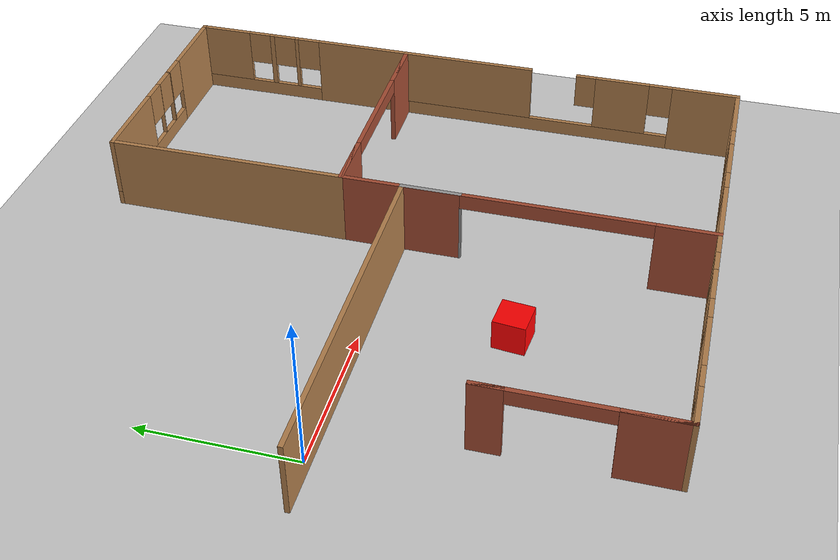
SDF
<sdf version="1.7">
 <world name="default">
  <model name="ground_plane">
   <static>1</static>
   <link name="link">
    <collision name="collision">
     <geometry><plane><normal>0 0 1</normal><size>100 100</size></plane></geometry>
     <surface>
      <contact><collide_bitmask>65535</collide_bitmask></contact>
      <friction><ode><mu>100</mu><mu2>50</mu2></ode></friction>
     </surface>
    </collision>
    <visual name="visual">
     <cast_shadows>0</cast_shadows>
     <geometry><plane><normal>0 0 1</normal><size>100 100</size></plane></geometry>
     <material>
      <script><uri>file://media/materials/scripts/gazebo.material</uri><name>Gazebo/Grey</name></script>
     </material>
    </visual>
   </link>
  </model>
  <model name="Untitled">
   <pose>3.61362 -0.139707 0 0 -0 0</pose>
   <link name="Wall_104">
    <pose>13.7 -3.925 0 0 -0 1.5708</pose>
    <visual name="Wall_104_Visual_0">
     <pose>-4.84194 0 1.25 0 -0 0</pose>
     <geometry><box><size>2.31612 0.15 2.5</size></box></geometry>
     <material>
      <script><uri>file://media/materials/scripts/gazebo.material</uri><name>Gazebo/Wood</name></script>
      <ambient>1 1 1 1</ambient>
     </material>
     <meta><layer>0</layer></meta>
    </visual>
    <collision name="Wall_104_Collision_0">
     <geometry><box><size>2.31612 0.15 2.5</size></box></geometry>
     <pose>-4.84194 0 1.25 0 -0 0</pose>
    </collision>
    <visual name="Wall_104_Visual_1">
     <pose>1.15806 0 0.25 0 -0 0</pose>
     <geometry><box><size>9.68388 0.15 0.5</size></box></geometry>
     <material>
      <script><uri>file://media/materials/scripts/gazebo.material</uri><name>Gazebo/Wood</name></script>
      <ambient>1 1 1 1</ambient>
     </material>
     <meta><layer>0</layer></meta>
    </visual>
    <collision name="Wall_104_Collision_1">
     <geometry><box><size>9.68388 0.15 0.5</size></box></geometry>
     <pose>1.15806 0 0.25 0 -0 0</pose>
    </collision>
    <visual name="Wall_104_Visual_2">
     <pose>-1.94057 0 1.5 0 -0 0</pose>
     <geometry><box><size>1.88662 0.15 2</size></box></geometry>
     <material>
      <script><uri>file://media/materials/scripts/gazebo.material</uri><name>Gazebo/Wood</name></script>
      <ambient>1 1 1 1</ambient>
     </material>
     <meta><layer>0</layer></meta>
    </visual>
    <collision name="Wall_104_Collision_2">
     <geometry><box><size>1.88662 0.15 2</size></box></geometry>
     <pose>-1.94057 0 1.5 0 -0 0</pose>
    </collision>
    <visual name="Wall_104_Visual_3">
     <pose>3.64617 0 1.5 0 -0 0</pose>
     <geometry><box><size>4.70765 0.15 2</size></box></geometry>
     <material>
      <script><uri>file://media/materials/scripts/gazebo.material</uri><name>Gazebo/Wood</name></script>
      <ambient>1 1 1 1</ambient>
     </material>
     <meta><layer>0</layer></meta>
    </visual>
    <collision name="Wall_104_Collision_3">
     <geometry><box><size>4.70765 0.15 2</size></box></geometry>
     <pose>3.64617 0 1.5 0 -0 0</pose>
    </collision>
    <visual name="Wall_104_Visual_4">
     <pose>-3.28388 0 1.9 0 -0 0</pose>
     <geometry><box><size>0.8 0.15 1.2</size></box></geometry>
     <material>
      <script><uri>file://media/materials/scripts/gazebo.material</uri><name>Gazebo/Wood</name></script>
      <ambient>1 1 1 1</ambient>
     </material>
     <meta><layer>0</layer></meta>
    </visual>
    <collision name="Wall_104_Collision_4">
     <geometry><box><size>0.8 0.15 1.2</size></box></geometry>
     <pose>-3.28388 0 1.9 0 -0 0</pose>
    </collision>
    <visual name="Wall_104_Visual_5">
     <pose>-0.651462 0 1.9 0 -0 0</pose>
     <geometry><box><size>0.691605 0.15 1.2</size></box></geometry>
     <material>
      <script><uri>file://media/materials/scripts/gazebo.material</uri><name>Gazebo/Wood</name></script>
      <ambient>1 1 1 1</ambient>
     </material>
     <meta><layer>0</layer></meta>
    </visual>
    <collision name="Wall_104_Collision_5">
     <geometry><box><size>0.691605 0.15 1.2</size></box></geometry>
     <pose>-0.651462 0 1.9 0 -0 0</pose>
    </collision>
   </link>
   <link name="Wall_105">
    <pose>9.775 2 0 0 -0 3.14159</pose>
    <visual name="Wall_105_Visual_0">
     <pose>-2.99483 0 1.25 0 -0 0</pose>
     <geometry><box><size>2.01034 0.15 2.5</size></box></geometry>
     <material>
      <script><uri>file://media/materials/scripts/gazebo.material</uri><name>Gazebo/Bricks</name></script>
      <ambient>1 1 1 1</ambient>
     </material>
     <meta><layer>0</layer></meta>
    </visual>
    <collision name="Wall_105_Collision_0">
     <geometry><box><size>2.01034 0.15 2.5</size></box></geometry>
     <pose>-2.99483 0 1.25 0 -0 0</pose>
    </collision>
    <visual name="Wall_105_Visual_1">
     <pose>3.00517 0 1.25 0 -0 0</pose>
     <geometry><box><size>1.98966 0.15 2.5</size></box></geometry>
     <material>
      <script><uri>file://media/materials/scripts/gazebo.material</uri><name>Gazebo/Bricks</name></script>
      <ambient>1 1 1 1</ambient>
     </material>
     <meta><layer>0</layer></meta>
    </visual>
    <collision name="Wall_105_Collision_1">
     <geometry><box><size>1.98966 0.15 2.5</size></box></geometry>
     <pose>3.00517 0 1.25 0 -0 0</pose>
    </collision>
    <visual name="Wall_105_Visual_2">
     <pose>0.010343 0 2.25 0 -0 0</pose>
     <geometry><box><size>4 0.15 0.5</size></box></geometry>
     <material>
      <script><uri>file://media/materials/scripts/gazebo.material</uri><name>Gazebo/Bricks</name></script>
      <ambient>1 1 1 1</ambient>
     </material>
     <meta><layer>0</layer></meta>
    </visual>
    <collision name="Wall_105_Collision_2">
     <geometry><box><size>4 0.15 0.5</size></box></geometry>
     <pose>0.010343 0 2.25 0 -0 0</pose>
    </collision>
   </link>
   <link name="Wall_106">
    <collision name="Wall_106_Collision">
     <geometry><box><size>2 0.15 2.5</size></box></geometry>
     <pose>0 0 1.25 0 -0 0</pose>
    </collision>
    <visual name="Wall_106_Visual">
     <pose>0 0 1.25 0 -0 0</pose>
     <geometry><box><size>2 0.15 2.5</size></box></geometry>
     <material>
      <script><uri>file://media/materials/scripts/gazebo.material</uri><name>Gazebo/Bricks</name></script>
      <ambient>1 1 1 1</ambient>
     </material>
     <meta><layer>0</layer></meta>
    </visual>
    <pose>6.775 2 0 0 -0 0</pose>
   </link>
   <link name="Wall_109">
    <collision name="Wall_109_Collision">
     <geometry><box><size>2 0.15 2.5</size></box></geometry>
     <pose>0 0 1.25 0 -0 0</pose>
    </collision>
    <visual name="Wall_109_Visual">
     <pose>0 0 1.25 0 -0 0</pose>
     <geometry><box><size>2 0.15 2.5</size></box></geometry>
     <material>
      <script><uri>file://media/materials/scripts/gazebo.material</uri><name>Gazebo/Bricks</name></script>
      <ambient>1 1 1 1</ambient>
     </material>
     <meta><layer>0</layer></meta>
    </visual>
    <pose>12.775 2 0 0 -0 3.14159</pose>
   </link>
   <link name="Wall_160">
    <pose>13.7 5.925 0 0 -0 1.5708</pose>
    <visual name="Wall_160_Visual_0">
     <pose>-2.29442 0 1.25 0 -0 0</pose>
     <geometry><box><size>3.41115 0.15 2.5</size></box></geometry>
     <material>
      <script><uri>file://media/materials/scripts/gazebo.material</uri><name>Gazebo/Wood</name></script>
      <ambient>1 1 1 1</ambient>
     </material>
     <meta><layer>0</layer></meta>
    </visual>
    <collision name="Wall_160_Collision_0">
     <geometry><box><size>3.41115 0.15 2.5</size></box></geometry>
     <pose>-2.29442 0 1.25 0 -0 0</pose>
    </collision>
    <visual name="Wall_160_Visual_1">
     <pose>1.70558 0 0.25 0 -0 0</pose>
     <geometry><box><size>4.58885 0.15 0.5</size></box></geometry>
     <material>
      <script><uri>file://media/materials/scripts/gazebo.material</uri><name>Gazebo/Wood</name></script>
      <ambient>1 1 1 1</ambient>
     </material>
     <meta><layer>0</layer></meta>
    </visual>
    <collision name="Wall_160_Collision_1">
     <geometry><box><size>4.58885 0.15 0.5</size></box></geometry>
     <pose>1.70558 0 0.25 0 -0 0</pose>
    </collision>
    <visual name="Wall_160_Visual_2">
     <pose>0.276509 0 1.5 0 -0 0</pose>
     <geometry><box><size>0.130717 0.15 2</size></box></geometry>
     <material>
      <script><uri>file://media/materials/scripts/gazebo.material</uri><name>Gazebo/Wood</name></script>
      <ambient>1 1 1 1</ambient>
     </material>
     <meta><layer>0</layer></meta>
    </visual>
    <collision name="Wall_160_Collision_2">
     <geometry><box><size>0.130717 0.15 2</size></box></geometry>
     <pose>0.276509 0 1.5 0 -0 0</pose>
    </collision>
    <visual name="Wall_160_Visual_3">
     <pose>1.22734 0 1.5 0 -0 0</pose>
     <geometry><box><size>0.170934 0.15 2</size></box></geometry>
     <material>
      <script><uri>file://media/materials/scripts/gazebo.material</uri><name>Gazebo/Wood</name></script>
      <ambient>1 1 1 1</ambient>
     </material>
     <meta><layer>0</layer></meta>
    </visual>
    <collision name="Wall_160_Collision_3">
     <geometry><box><size>0.170934 0.15 2</size></box></geometry>
     <pose>1.22734 0 1.5 0 -0 0</pose>
    </collision>
    <visual name="Wall_160_Visual_4">
     <pose>3.0564 0 1.5 0 -0 0</pose>
     <geometry><box><size>1.8872 0.15 2</size></box></geometry>
     <material>
      <script><uri>file://media/materials/scripts/gazebo.material</uri><name>Gazebo/Wood</name></script>
      <ambient>1 1 1 1</ambient>
     </material>
     <meta><layer>0</layer></meta>
    </visual>
    <collision name="Wall_160_Collision_4">
     <geometry><box><size>1.8872 0.15 2</size></box></geometry>
     <pose>3.0564 0 1.5 0 -0 0</pose>
    </collision>
    <visual name="Wall_160_Visual_5">
     <pose>-0.188849 0 1.9 0 -0 0</pose>
     <geometry><box><size>0.8 0.15 1.2</size></box></geometry>
     <material>
      <script><uri>file://media/materials/scripts/gazebo.material</uri><name>Gazebo/Wood</name></script>
      <ambient>1 1 1 1</ambient>
     </material>
     <meta><layer>0</layer></meta>
    </visual>
    <collision name="Wall_160_Collision_5">
     <geometry><box><size>0.8 0.15 1.2</size></box></geometry>
     <pose>-0.188849 0 1.9 0 -0 0</pose>
    </collision>
    <visual name="Wall_160_Visual_6">
     <pose>0.741868 0 1.9 0 -0 0</pose>
     <geometry><box><size>0.8 0.15 1.2</size></box></geometry>
     <material>
      <script><uri>file://media/materials/scripts/gazebo.material</uri><name>Gazebo/Wood</name></script>
      <ambient>1 1 1 1</ambient>
     </material>
     <meta><layer>0</layer></meta>
    </visual>
    <collision name="Wall_160_Collision_6">
     <geometry><box><size>0.8 0.15 1.2</size></box></geometry>
     <pose>0.741868 0 1.9 0 -0 0</pose>
    </collision>
    <visual name="Wall_160_Visual_7">
     <pose>1.7128 0 1.9 0 -0 0</pose>
     <geometry><box><size>0.8 0.15 1.2</size></box></geometry>
     <material>
      <script><uri>file://media/materials/scripts/gazebo.material</uri><name>Gazebo/Wood</name></script>
      <ambient>1 1 1 1</ambient>
     </material>
     <meta><layer>0</layer></meta>
    </visual>
    <collision name="Wall_160_Collision_7">
     <geometry><box><size>0.8 0.15 1.2</size></box></geometry>
     <pose>1.7128 0 1.9 0 -0 0</pose>
    </collision>
   </link>
   <link name="Wall_161">
    <pose>9.775 9.85 0 0 -0 3.14159</pose>
    <visual name="Wall_161_Visual_0">
     <pose>-2.67434 0 1.25 0 -0 0</pose>
     <geometry><box><size>2.65131 0.15 2.5</size></box></geometry>
     <material>
      <script><uri>file://media/materials/scripts/gazebo.material</uri><name>Gazebo/Wood</name></script>
      <ambient>1 1 1 1</ambient>
     </material>
     <meta><layer>0</layer></meta>
    </visual>
    <collision name="Wall_161_Collision_0">
     <geometry><box><size>2.65131 0.15 2.5</size></box></geometry>
     <pose>-2.67434 0 1.25 0 -0 0</pose>
    </collision>
    <visual name="Wall_161_Visual_1">
     <pose>1.32566 0 0.25 0 -0 0</pose>
     <geometry><box><size>5.34868 0.15 0.5</size></box></geometry>
     <material>
      <script><uri>file://media/materials/scripts/gazebo.material</uri><name>Gazebo/Wood</name></script>
      <ambient>1 1 1 1</ambient>
     </material>
     <meta><layer>0</layer></meta>
    </visual>
    <collision name="Wall_161_Collision_1">
     <geometry><box><size>5.34868 0.15 0.5</size></box></geometry>
     <pose>1.32566 0 0.25 0 -0 0</pose>
    </collision>
    <visual name="Wall_161_Visual_2">
     <pose>-0.523901 0 1.5 0 -0 0</pose>
     <geometry><box><size>0.049567 0.15 2</size></box></geometry>
     <material>
      <script><uri>file://media/materials/scripts/gazebo.material</uri><name>Gazebo/Wood</name></script>
      <ambient>1 1 1 1</ambient>
     </material>
     <meta><layer>0</layer></meta>
    </visual>
    <collision name="Wall_161_Collision_2">
     <geometry><box><size>0.049567 0.15 2</size></box></geometry>
     <pose>-0.523901 0 1.5 0 -0 0</pose>
    </collision>
    <visual name="Wall_161_Visual_3">
     <pose>0.305438 0 1.5 0 -0 0</pose>
     <geometry><box><size>0.009112 0.15 2</size></box></geometry>
     <material>
      <script><uri>file://media/materials/scripts/gazebo.material</uri><name>Gazebo/Wood</name></script>
      <ambient>1 1 1 1</ambient>
     </material>
     <meta><layer>0</layer></meta>
    </visual>
    <collision name="Wall_161_Collision_3">
     <geometry><box><size>0.009112 0.15 2</size></box></geometry>
     <pose>0.305438 0 1.5 0 -0 0</pose>
    </collision>
    <visual name="Wall_161_Visual_4">
     <pose>2.555 0 1.5 0 -0 0</pose>
     <geometry><box><size>2.89001 0.15 2</size></box></geometry>
     <material>
      <script><uri>file://media/materials/scripts/gazebo.material</uri><name>Gazebo/Wood</name></script>
      <ambient>1 1 1 1</ambient>
     </material>
     <meta><layer>0</layer></meta>
    </visual>
    <collision name="Wall_161_Collision_4">
     <geometry><box><size>2.89001 0.15 2</size></box></geometry>
     <pose>2.555 0 1.5 0 -0 0</pose>
    </collision>
    <visual name="Wall_161_Visual_5">
     <pose>-0.948685 0 1.9 0 -0 0</pose>
     <geometry><box><size>0.8 0.15 1.2</size></box></geometry>
     <material>
      <script><uri>file://media/materials/scripts/gazebo.material</uri><name>Gazebo/Wood</name></script>
      <ambient>1 1 1 1</ambient>
     </material>
     <meta><layer>0</layer></meta>
    </visual>
    <collision name="Wall_161_Collision_5">
     <geometry><box><size>0.8 0.15 1.2</size></box></geometry>
     <pose>-0.948685 0 1.9 0 -0 0</pose>
    </collision>
    <visual name="Wall_161_Visual_6">
     <pose>-0.099118 0 1.9 0 -0 0</pose>
     <geometry><box><size>0.8 0.15 1.2</size></box></geometry>
     <material>
      <script><uri>file://media/materials/scripts/gazebo.material</uri><name>Gazebo/Wood</name></script>
      <ambient>1 1 1 1</ambient>
     </material>
     <meta><layer>0</layer></meta>
    </visual>
    <collision name="Wall_161_Collision_6">
     <geometry><box><size>0.8 0.15 1.2</size></box></geometry>
     <pose>-0.099118 0 1.9 0 -0 0</pose>
    </collision>
    <visual name="Wall_161_Visual_7">
     <pose>0.709994 0 1.9 0 -0 0</pose>
     <geometry><box><size>0.8 0.15 1.2</size></box></geometry>
     <material>
      <script><uri>file://media/materials/scripts/gazebo.material</uri><name>Gazebo/Wood</name></script>
      <ambient>1 1 1 1</ambient>
     </material>
     <meta><layer>0</layer></meta>
    </visual>
    <collision name="Wall_161_Collision_7">
     <geometry><box><size>0.8 0.15 1.2</size></box></geometry>
     <pose>0.709994 0 1.9 0 -0 0</pose>
    </collision>
   </link>
   <link name="Wall_162">
    <collision name="Wall_162_Collision">
     <geometry><box><size>8 0.15 2.5</size></box></geometry>
     <pose>0 0 1.25 0 -0 0</pose>
    </collision>
    <visual name="Wall_162_Visual">
     <pose>0 0 1.25 0 -0 0</pose>
     <geometry><box><size>8 0.15 2.5</size></box></geometry>
     <material>
      <script><uri>file://media/materials/scripts/gazebo.material</uri><name>Gazebo/Wood</name></script>
      <ambient>1 1 1 1</ambient>
     </material>
     <meta><layer>0</layer></meta>
    </visual>
    <pose>5.85 5.925 0 0 -0 -1.5708</pose>
   </link>
   <link name="Wall_50">
    <pose>1.925 -9.85 0 0 -0 0</pose>
    <visual name="Wall_50_Visual_0">
     <pose>-3.28478 0 1.25 0 -0 0</pose>
     <geometry><box><size>1.43044 0.15 2.5</size></box></geometry>
     <material>
      <script><uri>file://media/materials/scripts/gazebo.material</uri><name>Gazebo/Wood</name></script>
      <ambient>1 1 1 1</ambient>
     </material>
     <meta><layer>0</layer></meta>
    </visual>
    <collision name="Wall_50_Collision_0">
     <geometry><box><size>1.43044 0.15 2.5</size></box></geometry>
     <pose>-3.28478 0 1.25 0 -0 0</pose>
    </collision>
    <visual name="Wall_50_Visual_1">
     <pose>0.71522 0 0.25 0 -0 0</pose>
     <geometry><box><size>6.56956 0.15 0.5</size></box></geometry>
     <material>
      <script><uri>file://media/materials/scripts/gazebo.material</uri><name>Gazebo/Wood</name></script>
      <ambient>1 1 1 1</ambient>
     </material>
     <meta><layer>0</layer></meta>
    </visual>
    <collision name="Wall_50_Collision_1">
     <geometry><box><size>6.56956 0.15 0.5</size></box></geometry>
     <pose>0.71522 0 0.25 0 -0 0</pose>
    </collision>
    <visual name="Wall_50_Visual_2">
     <pose>-0.79965 0 1.5 0 -0 0</pose>
     <geometry><box><size>1.93982 0.15 2</size></box></geometry>
     <material>
      <script><uri>file://media/materials/scripts/gazebo.material</uri><name>Gazebo/Wood</name></script>
      <ambient>1 1 1 1</ambient>
     </material>
     <meta><layer>0</layer></meta>
    </visual>
    <collision name="Wall_50_Collision_2">
     <geometry><box><size>1.93982 0.15 2</size></box></geometry>
     <pose>-0.79965 0 1.5 0 -0 0</pose>
    </collision>
    <visual name="Wall_50_Visual_3">
     <pose>1.62097 0 1.5 0 -0 0</pose>
     <geometry><box><size>1.30142 0.15 2</size></box></geometry>
     <material>
      <script><uri>file://media/materials/scripts/gazebo.material</uri><name>Gazebo/Wood</name></script>
      <ambient>1 1 1 1</ambient>
     </material>
     <meta><layer>0</layer></meta>
    </visual>
    <collision name="Wall_50_Collision_3">
     <geometry><box><size>1.30142 0.15 2</size></box></geometry>
     <pose>1.62097 0 1.5 0 -0 0</pose>
    </collision>
    <visual name="Wall_50_Visual_4">
     <pose>3.53584 0 1.5 0 -0 0</pose>
     <geometry><box><size>0.928324 0.15 2</size></box></geometry>
     <material>
      <script><uri>file://media/materials/scripts/gazebo.material</uri><name>Gazebo/Wood</name></script>
      <ambient>1 1 1 1</ambient>
     </material>
     <meta><layer>0</layer></meta>
    </visual>
    <collision name="Wall_50_Collision_4">
     <geometry><box><size>0.928324 0.15 2</size></box></geometry>
     <pose>3.53584 0 1.5 0 -0 0</pose>
    </collision>
    <visual name="Wall_50_Visual_5">
     <pose>-2.16956 0 1.9 0 -0 0</pose>
     <geometry><box><size>0.8 0.15 1.2</size></box></geometry>
     <material>
      <script><uri>file://media/materials/scripts/gazebo.material</uri><name>Gazebo/Wood</name></script>
      <ambient>1 1 1 1</ambient>
     </material>
     <meta><layer>0</layer></meta>
    </visual>
    <collision name="Wall_50_Collision_5">
     <geometry><box><size>0.8 0.15 1.2</size></box></geometry>
     <pose>-2.16956 0 1.9 0 -0 0</pose>
    </collision>
    <visual name="Wall_50_Visual_6">
     <pose>0.570261 0 1.9 0 -0 0</pose>
     <geometry><box><size>0.8 0.15 1.2</size></box></geometry>
     <material>
      <script><uri>file://media/materials/scripts/gazebo.material</uri><name>Gazebo/Wood</name></script>
      <ambient>1 1 1 1</ambient>
     </material>
     <meta><layer>0</layer></meta>
    </visual>
    <collision name="Wall_50_Collision_6">
     <geometry><box><size>0.8 0.15 1.2</size></box></geometry>
     <pose>0.570261 0 1.9 0 -0 0</pose>
    </collision>
    <visual name="Wall_50_Visual_7">
     <pose>2.67168 0 1.9 0 -0 0</pose>
     <geometry><box><size>0.8 0.15 1.2</size></box></geometry>
     <material>
      <script><uri>file://media/materials/scripts/gazebo.material</uri><name>Gazebo/Wood</name></script>
      <ambient>1 1 1 1</ambient>
     </material>
     <meta><layer>0</layer></meta>
    </visual>
    <collision name="Wall_50_Collision_7">
     <geometry><box><size>0.8 0.15 1.2</size></box></geometry>
     <pose>2.67168 0 1.9 0 -0 0</pose>
    </collision>
   </link>
   <link name="Wall_51">
    <pose>5.85 -4.925 0 0 -0 1.5708</pose>
    <visual name="Wall_51_Visual_0">
     <pose>-4.00899 0 1.25 0 -0 0</pose>
     <geometry><box><size>1.98202 0.15 2.5</size></box></geometry>
     <material>
      <script><uri>file://media/materials/scripts/gazebo.material</uri><name>Gazebo/Bricks</name></script>
      <ambient>1 1 1 1</ambient>
     </material>
     <meta><layer>0</layer></meta>
    </visual>
    <collision name="Wall_51_Collision_0">
     <geometry><box><size>1.98202 0.15 2.5</size></box></geometry>
     <pose>-4.00899 0 1.25 0 -0 0</pose>
    </collision>
    <visual name="Wall_51_Visual_1">
     <pose>4.02951 0 1.25 0 -0 0</pose>
     <geometry><box><size>1.94098 0.15 2.5</size></box></geometry>
     <material>
      <script><uri>file://media/materials/scripts/gazebo.material</uri><name>Gazebo/Bricks</name></script>
      <ambient>1 1 1 1</ambient>
     </material>
     <meta><layer>0</layer></meta>
    </visual>
    <collision name="Wall_51_Collision_1">
     <geometry><box><size>1.94098 0.15 2.5</size></box></geometry>
     <pose>4.02951 0 1.25 0 -0 0</pose>
    </collision>
    <visual name="Wall_51_Visual_2">
     <pose>0.020518 0 2.25 0 -0 0</pose>
     <geometry><box><size>6.077 0.15 0.5</size></box></geometry>
     <material>
      <script><uri>file://media/materials/scripts/gazebo.material</uri><name>Gazebo/Bricks</name></script>
      <ambient>1 1 1 1</ambient>
     </material>
     <meta><layer>0</layer></meta>
    </visual>
    <collision name="Wall_51_Collision_2">
     <geometry><box><size>6.077 0.15 0.5</size></box></geometry>
     <pose>0.020518 0 2.25 0 -0 0</pose>
    </collision>
   </link>
   <link name="Wall_57">
    <pose>-2 -6.925 0 0 -0 1.5708</pose>
    <visual name="Wall_57_Visual_0">
     <pose>-1.99846 0 1.25 0 -0 0</pose>
     <geometry><box><size>2.00308 0.15 2.5</size></box></geometry>
     <material>
      <script><uri>file://media/materials/scripts/gazebo.material</uri><name>Gazebo/Bricks</name></script>
      <ambient>1 1 1 1</ambient>
     </material>
     <meta><layer>0</layer></meta>
    </visual>
    <collision name="Wall_57_Collision_0">
     <geometry><box><size>2.00308 0.15 2.5</size></box></geometry>
     <pose>-1.99846 0 1.25 0 -0 0</pose>
    </collision>
    <visual name="Wall_57_Visual_1">
     <pose>2.49977 0 1.25 0 -0 0</pose>
     <geometry><box><size>1.00047 0.15 2.5</size></box></geometry>
     <material>
      <script><uri>file://media/materials/scripts/gazebo.material</uri><name>Gazebo/Bricks</name></script>
      <ambient>1 1 1 1</ambient>
     </material>
     <meta><layer>0</layer></meta>
    </visual>
    <collision name="Wall_57_Collision_1">
     <geometry><box><size>1.00047 0.15 2.5</size></box></geometry>
     <pose>2.49977 0 1.25 0 -0 0</pose>
    </collision>
    <visual name="Wall_57_Visual_2">
     <pose>0.501304 0 2.25 0 -0 0</pose>
     <geometry><box><size>2.99645 0.15 0.5</size></box></geometry>
     <material>
      <script><uri>file://media/materials/scripts/gazebo.material</uri><name>Gazebo/Bricks</name></script>
      <ambient>1 1 1 1</ambient>
     </material>
     <meta><layer>0</layer></meta>
    </visual>
    <collision name="Wall_57_Collision_2">
     <geometry><box><size>2.99645 0.15 0.5</size></box></geometry>
     <pose>0.501304 0 2.25 0 -0 0</pose>
    </collision>
   </link>
   <link name="Wall_63">
    <collision name="Wall_63_Collision">
     <geometry><box><size>2 0.15 2.5</size></box></geometry>
     <pose>0 0 1.25 0 -0 0</pose>
    </collision>
    <visual name="Wall_63_Visual">
     <pose>0 0 1.25 0 -0 0</pose>
     <geometry><box><size>2 0.15 2.5</size></box></geometry>
     <material>
      <script><uri>file://media/materials/scripts/gazebo.material</uri><name>Gazebo/Bricks</name></script>
      <ambient>1 1 1 1</ambient>
     </material>
     <meta><layer>0</layer></meta>
    </visual>
    <pose>-2 -8.925 0 0 -0 1.5708</pose>
   </link>
   <link name="Wall_66">
    <collision name="Wall_66_Collision">
     <geometry><box><size>1 0.15 2.5</size></box></geometry>
     <pose>0 0 1.25 0 -0 0</pose>
    </collision>
    <visual name="Wall_66_Visual">
     <pose>0 0 1.25 0 -0 0</pose>
     <geometry><box><size>1 0.15 2.5</size></box></geometry>
     <material>
      <script><uri>file://media/materials/scripts/gazebo.material</uri><name>Gazebo/Bricks</name></script>
      <ambient>1 1 1 1</ambient>
     </material>
     <meta><layer>0</layer></meta>
    </visual>
    <pose>-2 -4.425 0 0 -0 -1.5708</pose>
   </link>
   <link name="Wall_69">
    <collision name="Wall_69_Collision">
     <geometry><box><size>2 0.15 2.5</size></box></geometry>
     <pose>0 0 1.25 0 -0 0</pose>
    </collision>
    <visual name="Wall_69_Visual">
     <pose>0 0 1.25 0 -0 0</pose>
     <geometry><box><size>2 0.15 2.5</size></box></geometry>
     <material>
      <script><uri>file://media/materials/scripts/gazebo.material</uri><name>Gazebo/Bricks</name></script>
      <ambient>1 1 1 1</ambient>
     </material>
     <meta><layer>0</layer></meta>
    </visual>
    <pose>5.85 -8.925 0 0 -0 1.5708</pose>
   </link>
   <link name="Wall_73">
    <collision name="Wall_73_Collision">
     <geometry><box><size>2 0.15 2.5</size></box></geometry>
     <pose>0 0 1.25 0 -0 0</pose>
    </collision>
    <visual name="Wall_73_Visual">
     <pose>0 0 1.25 0 -0 0</pose>
     <geometry><box><size>2 0.15 2.5</size></box></geometry>
     <material>
      <script><uri>file://media/materials/scripts/gazebo.material</uri><name>Gazebo/Grey</name></script>
      <ambient>1 1 1 1</ambient>
     </material>
     <meta><layer>0</layer></meta>
    </visual>
    <pose>5.85 -0.925 0 0 -0 -1.5708</pose>
   </link>
   <link name="Wall_76">
    <collision name="Wall_76_Collision">
     <geometry><box><size>11.25 0.15 2.5</size></box></geometry>
     <pose>0 0 1.25 0 -0 0</pose>
    </collision>
    <visual name="Wall_76_Visual">
     <pose>0 0 1.25 0 -0 0</pose>
     <geometry><box><size>11.25 0.15 2.5</size></box></geometry>
     <material>
      <script><uri>file://media/materials/scripts/gazebo.material</uri><name>Gazebo/Wood</name></script>
      <ambient>1 1 1 1</ambient>
     </material>
     <meta><layer>0</layer></meta>
    </visual>
    <pose>0.3 0 0 0 -0 3.14159</pose>
   </link>
   <link name="Wall_80">
    <pose>9.775 -9.85 0 0 -0 0</pose>
    <visual name="Wall_80_Visual_0">
     <pose>-2.74095 0 1.25 0 -0 0</pose>
     <geometry><box><size>2.51811 0.15 2.5</size></box></geometry>
     <material>
      <script><uri>file://media/materials/scripts/gazebo.material</uri><name>Gazebo/Wood</name></script>
      <ambient>1 1 1 1</ambient>
     </material>
     <meta><layer>0</layer></meta>
    </visual>
    <collision name="Wall_80_Collision_0">
     <geometry><box><size>2.51811 0.15 2.5</size></box></geometry>
     <pose>-2.74095 0 1.25 0 -0 0</pose>
    </collision>
    <visual name="Wall_80_Visual_1">
     <pose>1.25905 0 0.25 0 -0 0</pose>
     <geometry><box><size>5.48189 0.15 0.5</size></box></geometry>
     <material>
      <script><uri>file://media/materials/scripts/gazebo.material</uri><name>Gazebo/Wood</name></script>
      <ambient>1 1 1 1</ambient>
     </material>
     <meta><layer>0</layer></meta>
    </visual>
    <collision name="Wall_80_Collision_1">
     <geometry><box><size>5.48189 0.15 0.5</size></box></geometry>
     <pose>1.25905 0 0.25 0 -0 0</pose>
    </collision>
    <visual name="Wall_80_Visual_2">
     <pose>0.141716 0 1.5 0 -0 0</pose>
     <geometry><box><size>1.64722 0.15 2</size></box></geometry>
     <material>
      <script><uri>file://media/materials/scripts/gazebo.material</uri><name>Gazebo/Wood</name></script>
      <ambient>1 1 1 1</ambient>
     </material>
     <meta><layer>0</layer></meta>
    </visual>
    <collision name="Wall_80_Collision_2">
     <geometry><box><size>1.64722 0.15 2</size></box></geometry>
     <pose>0.141716 0 1.5 0 -0 0</pose>
    </collision>
    <visual name="Wall_80_Visual_3">
     <pose>2.88266 0 1.5 0 -0 0</pose>
     <geometry><box><size>2.23468 0.15 2</size></box></geometry>
     <material>
      <script><uri>file://media/materials/scripts/gazebo.material</uri><name>Gazebo/Wood</name></script>
      <ambient>1 1 1 1</ambient>
     </material>
     <meta><layer>0</layer></meta>
    </visual>
    <collision name="Wall_80_Collision_3">
     <geometry><box><size>2.23468 0.15 2</size></box></geometry>
     <pose>2.88266 0 1.5 0 -0 0</pose>
    </collision>
    <visual name="Wall_80_Visual_4">
     <pose>-1.08189 0 1.9 0 -0 0</pose>
     <geometry><box><size>0.8 0.15 1.2</size></box></geometry>
     <material>
      <script><uri>file://media/materials/scripts/gazebo.material</uri><name>Gazebo/Wood</name></script>
      <ambient>1 1 1 1</ambient>
     </material>
     <meta><layer>0</layer></meta>
    </visual>
    <collision name="Wall_80_Collision_4">
     <geometry><box><size>0.8 0.15 1.2</size></box></geometry>
     <pose>-1.08189 0 1.9 0 -0 0</pose>
    </collision>
    <visual name="Wall_80_Visual_5">
     <pose>1.36532 0 1.9 0 -0 0</pose>
     <geometry><box><size>0.8 0.15 1.2</size></box></geometry>
     <material>
      <script><uri>file://media/materials/scripts/gazebo.material</uri><name>Gazebo/Wood</name></script>
      <ambient>1 1 1 1</ambient>
     </material>
     <meta><layer>0</layer></meta>
    </visual>
    <collision name="Wall_80_Collision_5">
     <geometry><box><size>0.8 0.15 1.2</size></box></geometry>
     <pose>1.36532 0 1.9 0 -0 0</pose>
    </collision>
   </link>
   <link name="Wall_89">
    <collision name="Wall_89_Collision">
     <geometry><box><size>2 0.15 2.5</size></box></geometry>
     <pose>0 0 1.25 0 -0 0</pose>
    </collision>
    <visual name="Wall_89_Visual">
     <pose>0 0 1.25 0 -0 0</pose>
     <geometry><box><size>2 0.15 2.5</size></box></geometry>
     <material>
      <script><uri>file://media/materials/scripts/gazebo.material</uri><name>Gazebo/Bricks</name></script>
      <ambient>1 1 1 1</ambient>
     </material>
     <meta><layer>0</layer></meta>
    </visual>
    <pose>5.85 0.925001 0 0 -0 1.5708</pose>
   </link>
   <static>1</static>
  </model>
  <model name="box">
   <pose>5.05234 -4.64324 1.46476 -2.82182 -1.57079 2.71813</pose>
   <link name="box_link">
    <inertial>
     <inertia><ixx>0.16666</ixx><ixy>0</ixy><ixz>0</ixz><iyy>0.16666</iyy><iyz>0</iyz><izz>0.16666</izz></inertia>
     <mass>1</mass>
    </inertial>
    <collision name="box_collision"><geometry><box><size>1 1 1</size></box></geometry></collision>
    <visual name="box_visual">
     <geometry><box><size>1 1 1</size></box></geometry>
     <material><ambient>1 0 0 1</ambient><diffuse>1 0 0 1</diffuse><specular>1 0 0 1</specular></material>
    </visual>
   </link>
  </model>
 </world>
</sdf>
